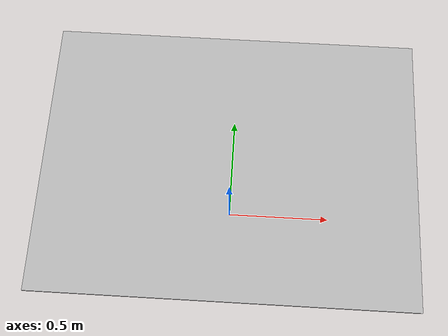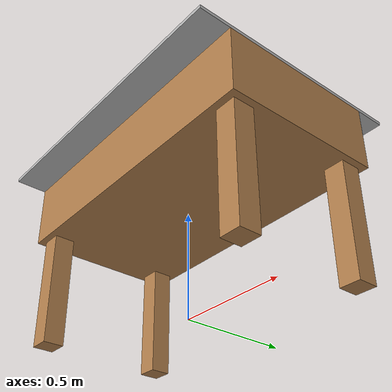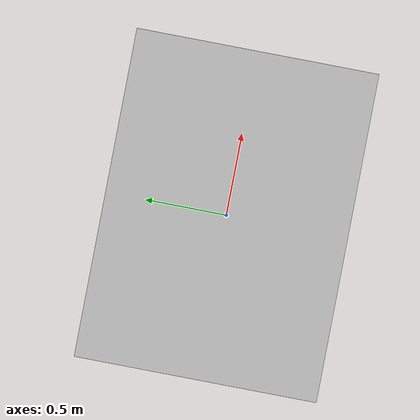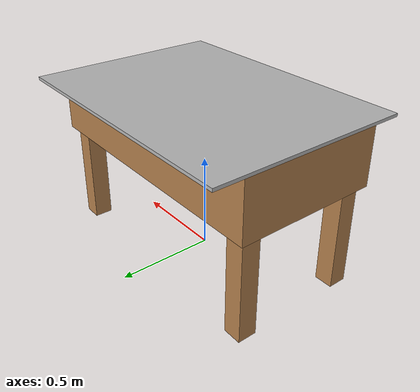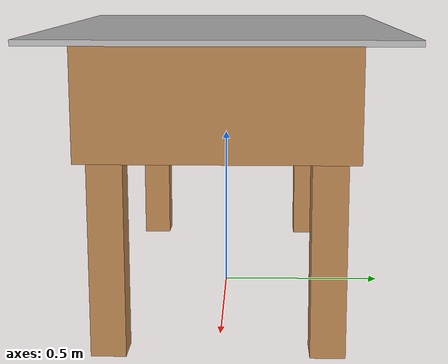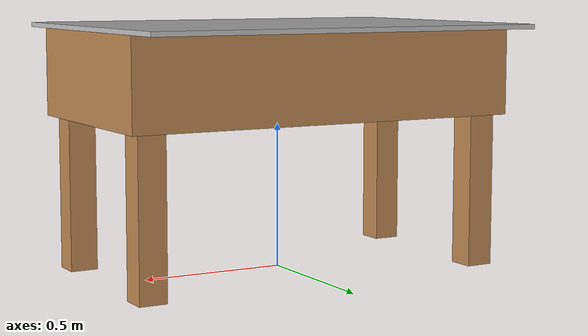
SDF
<?xml version='1.0'?>
<sdf version="1.4">
<!-- Assumed unit length: 1m = 100cm = 1000mm -->
<!-- inertias are tricky to compute -->
<!-- http://gazebosim.org/tutorials?tut=inertia&cat=build_robot -->
  <model name="table">
    <static>true</static>

    <link name="link">
      <inertial>
        <mass>1.0</mass>
      </inertial>

      <collision name="plate">
        <pose>0 0 0.838 0 0 0</pose>
        <geometry>
          <box>
            <size>1.4 1.033 0.016</size>
          </box>
        </geometry>
      </collision>
      <visual name="plate_visual">
        <pose>0 0 0.838 0 0 0</pose>
        <geometry>
          <box>
            <size>1.4 1.033 0.016</size>
          </box>
        </geometry>
        <material>
          <script>
            <uri>model://table/materials/scripts</uri>
            <uri>model://table/materials/textures</uri>
            <name>table_surface</name>
          </script>
        </material>
      </visual>

      <collision name="body">
        <pose>0 0 0.68 0 0 0</pose>
        <geometry>
          <box>
            <size>1.4 0.74 0.3</size>
          </box>
        </geometry>
      </collision>
      <visual name="body_visual">
        <pose>0 0 0.68 0 0 0</pose>
        <geometry>
          <box>
            <size>1.4 0.74 0.3</size>
          </box>
        </geometry>
        <material>
          <script>
            <uri>file://media/materials/scripts/gazebo.material</uri>
            <name>Gazebo/Wood</name>
          </script>
        </material>
      </visual>

      <collision name="leg_front_left">
        <pose>-0.6225 -0.2925 0.265 0 0 0</pose>
        <geometry>
          <box>
            <size>0.095 0.095 0.53</size>
          </box>
        </geometry>
      </collision>
      <visual name="leg_front_left_visual">
        <pose>-0.6225 -0.2925 0.265 0 0 0</pose>
        <geometry>
          <box>
            <size>0.095 0.095 0.53</size>
          </box>
        </geometry>
        <material>
          <script>
            <uri>file://media/materials/scripts/gazebo.material</uri>
            <name>Gazebo/Wood</name>
          </script>
        </material>
      </visual>

      <collision name="leg_front_right">
        <pose>-0.6225 0.2925 0.265 0 0 0</pose>
        <geometry>
          <box>
            <size>0.095 0.095 0.53</size>
          </box>
        </geometry>
      </collision>
      <visual name="leg_front_right_visual">
        <pose>-0.6225 0.2925 0.265 0 0 0</pose>
        <geometry>
          <box>
            <size>0.095 0.095 0.53</size>
          </box>
        </geometry>
        <material>
          <script>
            <uri>file://media/materials/scripts/gazebo.material</uri>
            <name>Gazebo/Wood</name>
          </script>
        </material>
      </visual>

      <collision name="leg_back_left">
        <pose>0.6225 -0.2925 0.265 0 0 0</pose>
        <geometry>
          <box>
            <size>0.095 0.095 0.53</size>
          </box>
        </geometry>
      </collision>
      <visual name="leg_back_left_visual">
        <pose>0.6225 -0.2925 0.265 0 0 0</pose>
        <geometry>
          <box>
            <size>0.095 0.095 0.53</size>
          </box>
        </geometry>
        <material>
          <script>
            <uri>file://media/materials/scripts/gazebo.material</uri>
            <name>Gazebo/Wood</name>
          </script>
        </material>
      </visual>

      <collision name="leg_back_right">
        <pose>0.6225 0.2925 0.265 0 0 0</pose>
        <geometry>
          <box>
            <size>0.095 0.095 0.53</size>
          </box>
        </geometry>
      </collision>
      <visual name="leg_back_right_visual">
        <pose>0.6225 0.2925 0.265 0 0 0</pose>
        <geometry>
          <box>
            <size>0.095 0.095 0.53</size>
          </box>
        </geometry>
        <material>
          <script>
            <uri>file://media/materials/scripts/gazebo.material</uri>
            <name>Gazebo/Wood</name>
          </script>
        </material>
      </visual>
    </link>
  </model>
</sdf>
